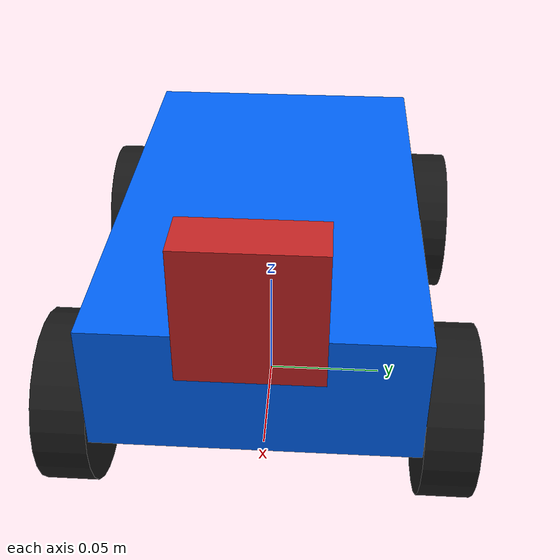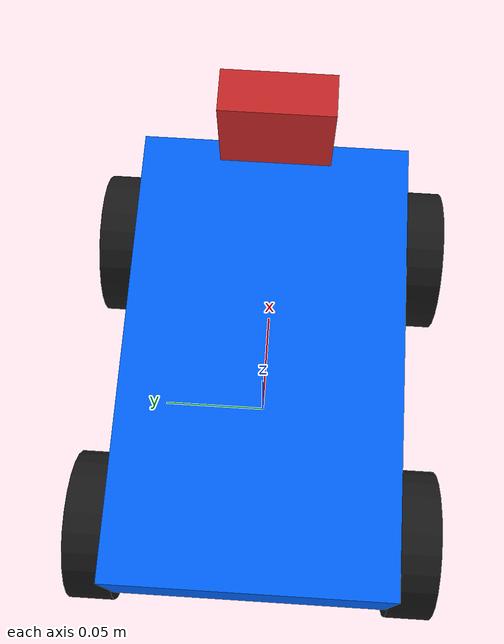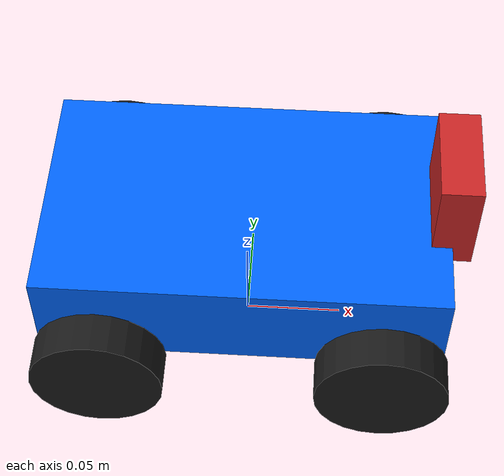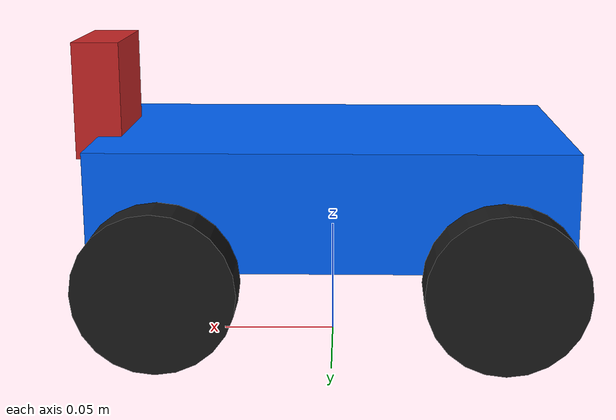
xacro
<?xml version="1.0" ?>
<robot name="ack" xmlns:xacro="http://ros.org/wiki/xacro">

  <gazebo>
    <plugin filename="ignition-gazebo-diff-drive-system" name="ignition::gazebo::systems::DiffDrive">
      <left_joint>wheel_lf_Joint</left_joint>
      <left_joint>wheel_lb_Joint</left_joint>
      <right_joint>wheel_rf_Joint</right_joint>
      <right_joint>wheel_rb_Joint</right_joint>
      <wheel_separation>0.14</wheel_separation>
      <wheel_radius>0.033</wheel_radius>
      <odom_publish_frequency>50</odom_publish_frequency>
      <topic>cmd_vel</topic>
    </plugin>
  </gazebo>

  <material name="black"><color rgba="0.1 0.1 0.1 1"/></material>
  <material name="blue"><color rgba="0.0 0.4 1.0 1"/></material>

  <link name="base_link">
    <inertial>
      <origin rpy="0 0 0" xyz="-0.001 0 -0.006"/>
      <mass value="0.5"/>
      <inertia ixx="0.001" ixy="0" ixz="0" iyy="0.001" iyz="0" izz="0.001"/>
    </inertial>
    <visual>
      <geometry><box size="0.2 0.12 0.05"/></geometry>
      <material name="blue"/>
    </visual>
    <collision>
      <geometry><box size="0.2 0.12 0.05"/></geometry>
    </collision>
  </link>

  <link name="base_footprint"/>
  <joint name="base_footprint_to_base_link" type="fixed">
    <parent link="base_footprint"/>
    <child link="base_link"/>
    <origin xyz="0 0 0.07" rpy="0 0 0"/>
  </joint>

  <xacro:macro name="wheel" params="prefix x y">
    <link name="wheel_${prefix}_Link">
      <visual>
        <origin rpy="1.5708 0 0" xyz="0 0 0"/>
        <geometry><cylinder radius="0.033" length="0.02"/></geometry>
        <material name="black"/>
      </visual>
      <collision>
        <origin rpy="1.5708 0 0" xyz="0 0 0"/>
        <geometry><cylinder radius="0.033" length="0.02"/></geometry>
      </collision>
      <inertial>
        <mass value="0.05"/>
        <inertia ixx="0.0001" ixy="0" ixz="0" iyy="0.0001" iyz="0" izz="0.0001"/>
      </inertial>
    </link>
    <joint name="wheel_${prefix}_Joint" type="continuous">
      <origin rpy="0 0 0" xyz="${x} ${y} -0.028"/>
      <parent link="base_link"/>
      <child link="wheel_${prefix}_Link"/>
      <axis xyz="0 1 0"/>
    </joint>
  </xacro:macro>

  <xacro:wheel prefix="lf" x="0.07" y="0.07"/>
  <xacro:wheel prefix="rf" x="0.07" y="-0.07"/>
  <xacro:wheel prefix="lb" x="-0.07" y="0.07"/>
  <xacro:wheel prefix="rb" x="-0.07" y="-0.07"/>

  <link name="depth_cam">
    <visual>
      <geometry><box size="0.02 0.05 0.05"/></geometry>
      <material name="red"/>
    </visual>
    <inertial>
      <mass value="0.01"/>
      <inertia ixx="0.0001" ixy="0" ixz="0" iyy="0.0001" iyz="0" izz="0.0001"/>
    </inertial>
  </link>

  <joint name="cam_Joint" type="fixed">
    <origin rpy="0 0 0" xyz="0.1 0 0.04"/>
    <parent link="base_link"/>
    <child link="depth_cam"/>
  </joint>

  <gazebo reference="depth_cam">
    <sensor name="front_camera" type="camera">
      <camera>
        <horizontal_fov>1.396</horizontal_fov>
        <image>
          <width>640</width>
          <height>480</height>
          <format>R8G8B8</format>
        </image>
        <clip>
          <near>0.02</near>
          <far>100.0</far>
        </clip>
      </camera>
      <always_on>1</always_on>
      <update_rate>30</update_rate>
      <visualize>true</visualize>
      <topic>/camera/image_raw</topic>
    </sensor>
  </gazebo>

</robot>
